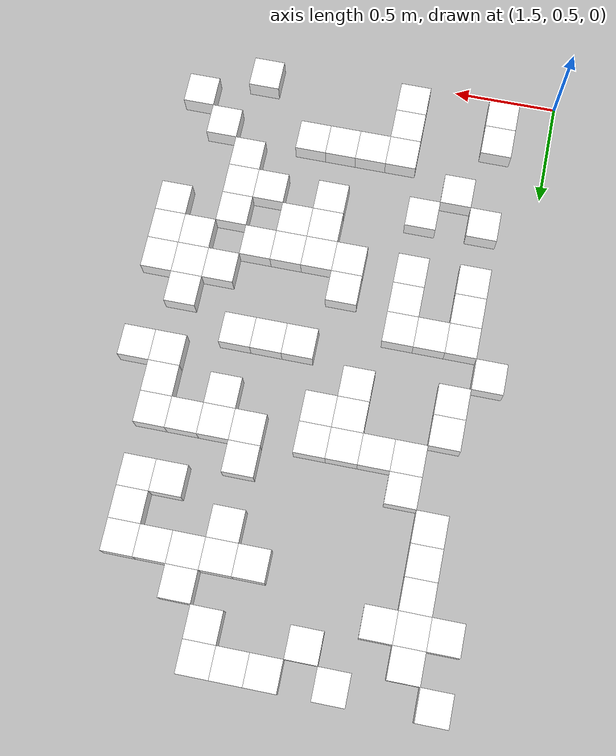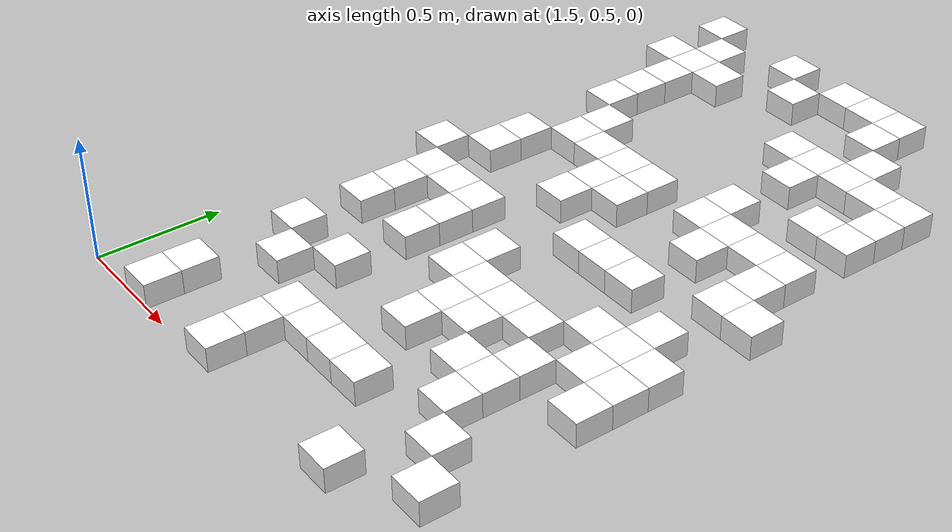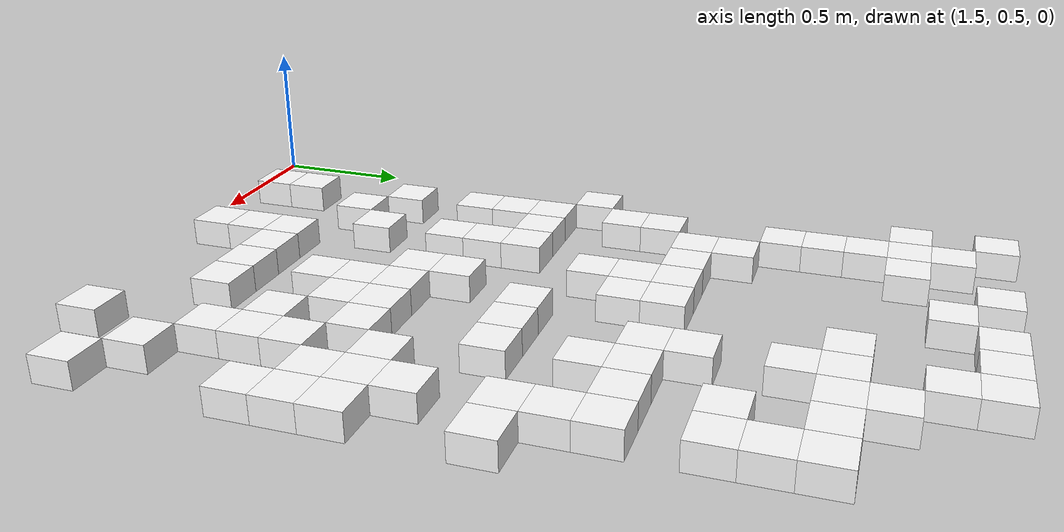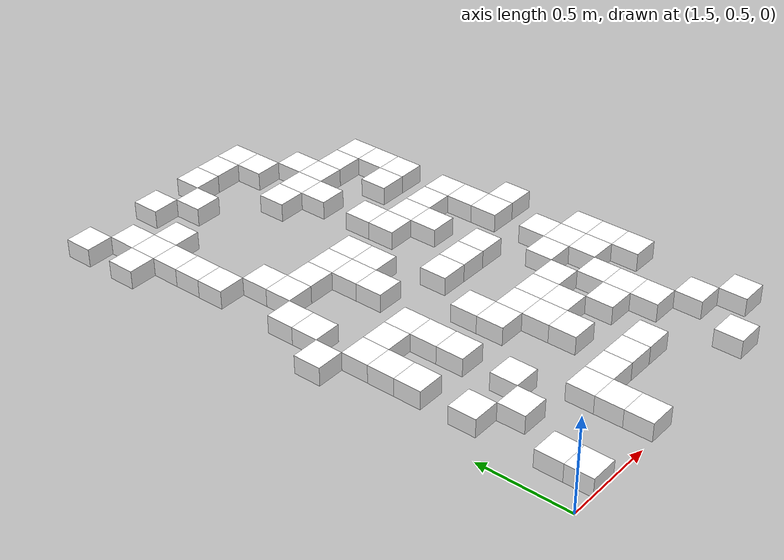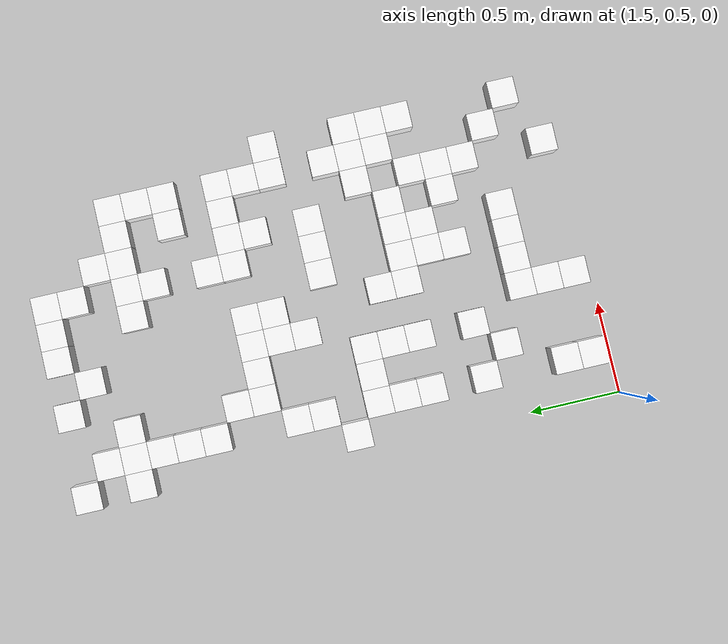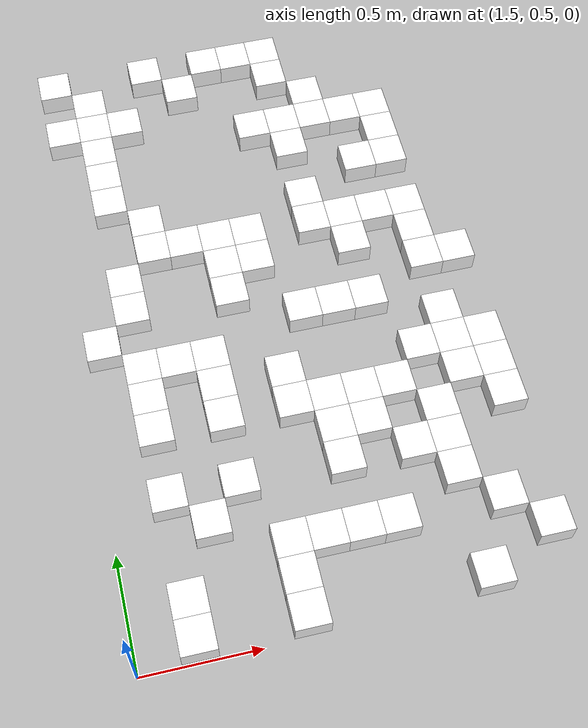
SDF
<sdf version="1.7">
 <world name="default">
  <include><uri>model://sun</uri></include>
  <model name="static_environment">
   <static>true</static>
   <link name="region_404">
    <pose>1.7499999999999996 0.6 0.0 0.0 0.0 0.0</pose>
    <collision name="region_404_collision">
     <geometry><box><size>0.15 0.15 0.1</size></box></geometry>
     <surface><friction><ode><mu>1.0</mu><mu2>1.0</mu2></ode></friction></surface>
    </collision>
    <visual name="region_404_visual">
     <geometry><box><size>0.15 0.15 0.1</size></box></geometry>
     <material><ambient>1.0 1.0 1.0 1.0</ambient><diffuse>1.0 1.0 1.0 1.0</diffuse></material>
    </visual>
   </link>
   <link name="region_405">
    <pose>2.2 0.6 0.0 0.0 0.0 0.0</pose>
    <collision name="region_405_collision">
     <geometry><box><size>0.15 0.15 0.1</size></box></geometry>
     <surface><friction><ode><mu>1.0</mu><mu2>1.0</mu2></ode></friction></surface>
    </collision>
    <visual name="region_405_visual">
     <geometry><box><size>0.15 0.15 0.1</size></box></geometry>
     <material><ambient>1.0 1.0 1.0 1.0</ambient><diffuse>1.0 1.0 1.0 1.0</diffuse></material>
    </visual>
   </link>
   <link name="region_406">
    <pose>2.950000000000002 0.6 0.0 0.0 0.0 0.0</pose>
    <collision name="region_406_collision">
     <geometry><box><size>0.15 0.15 0.1</size></box></geometry>
     <surface><friction><ode><mu>1.0</mu><mu2>1.0</mu2></ode></friction></surface>
    </collision>
    <visual name="region_406_visual">
     <geometry><box><size>0.15 0.15 0.1</size></box></geometry>
     <material><ambient>1.0 1.0 1.0 1.0</ambient><diffuse>1.0 1.0 1.0 1.0</diffuse></material>
    </visual>
   </link>
   <link name="region_411">
    <pose>1.7499999999999996 0.75 0.0 0.0 0.0 0.0</pose>
    <collision name="region_411_collision">
     <geometry><box><size>0.15 0.15 0.1</size></box></geometry>
     <surface><friction><ode><mu>1.0</mu><mu2>1.0</mu2></ode></friction></surface>
    </collision>
    <visual name="region_411_visual">
     <geometry><box><size>0.15 0.15 0.1</size></box></geometry>
     <material><ambient>1.0 1.0 1.0 1.0</ambient><diffuse>1.0 1.0 1.0 1.0</diffuse></material>
    </visual>
   </link>
   <link name="region_412">
    <pose>2.2 0.75 0.0 0.0 0.0 0.0</pose>
    <collision name="region_412_collision">
     <geometry><box><size>0.15 0.15 0.1</size></box></geometry>
     <surface><friction><ode><mu>1.0</mu><mu2>1.0</mu2></ode></friction></surface>
    </collision>
    <visual name="region_412_visual">
     <geometry><box><size>0.15 0.15 0.1</size></box></geometry>
     <material><ambient>1.0 1.0 1.0 1.0</ambient><diffuse>1.0 1.0 1.0 1.0</diffuse></material>
    </visual>
   </link>
   <link name="region_413">
    <pose>3.2500000000000027 0.75 0.0 0.0 0.0 0.0</pose>
    <collision name="region_413_collision">
     <geometry><box><size>0.15 0.15 0.1</size></box></geometry>
     <surface><friction><ode><mu>1.0</mu><mu2>1.0</mu2></ode></friction></surface>
    </collision>
    <visual name="region_413_visual">
     <geometry><box><size>0.15 0.15 0.1</size></box></geometry>
     <material><ambient>1.0 1.0 1.0 1.0</ambient><diffuse>1.0 1.0 1.0 1.0</diffuse></material>
    </visual>
   </link>
   <link name="region_416">
    <pose>2.2 0.8999999999999999 0.0 0.0 0.0 0.0</pose>
    <collision name="region_416_collision">
     <geometry><box><size>0.15 0.15 0.1</size></box></geometry>
     <surface><friction><ode><mu>1.0</mu><mu2>1.0</mu2></ode></friction></surface>
    </collision>
    <visual name="region_416_visual">
     <geometry><box><size>0.15 0.15 0.1</size></box></geometry>
     <material><ambient>1.0 1.0 1.0 1.0</ambient><diffuse>1.0 1.0 1.0 1.0</diffuse></material>
    </visual>
   </link>
   <link name="region_417">
    <pose>2.3500000000000005 0.8999999999999999 0.0 0.0 0.0 0.0</pose>
    <collision name="region_417_collision">
     <geometry><box><size>0.15 0.15 0.1</size></box></geometry>
     <surface><friction><ode><mu>1.0</mu><mu2>1.0</mu2></ode></friction></surface>
    </collision>
    <visual name="region_417_visual">
     <geometry><box><size>0.15 0.15 0.1</size></box></geometry>
     <material><ambient>1.0 1.0 1.0 1.0</ambient><diffuse>1.0 1.0 1.0 1.0</diffuse></material>
    </visual>
   </link>
   <link name="region_418">
    <pose>2.500000000000001 0.8999999999999999 0.0 0.0 0.0 0.0</pose>
    <collision name="region_418_collision">
     <geometry><box><size>0.15 0.15 0.1</size></box></geometry>
     <surface><friction><ode><mu>1.0</mu><mu2>1.0</mu2></ode></friction></surface>
    </collision>
    <visual name="region_418_visual">
     <geometry><box><size>0.15 0.15 0.1</size></box></geometry>
     <material><ambient>1.0 1.0 1.0 1.0</ambient><diffuse>1.0 1.0 1.0 1.0</diffuse></material>
    </visual>
   </link>
   <link name="region_419">
    <pose>2.6500000000000012 0.8999999999999999 0.0 0.0 0.0 0.0</pose>
    <collision name="region_419_collision">
     <geometry><box><size>0.15 0.15 0.1</size></box></geometry>
     <surface><friction><ode><mu>1.0</mu><mu2>1.0</mu2></ode></friction></surface>
    </collision>
    <visual name="region_419_visual">
     <geometry><box><size>0.15 0.15 0.1</size></box></geometry>
     <material><ambient>1.0 1.0 1.0 1.0</ambient><diffuse>1.0 1.0 1.0 1.0</diffuse></material>
    </visual>
   </link>
   <link name="region_420">
    <pose>3.1000000000000023 0.8999999999999999 0.0 0.0 0.0 0.0</pose>
    <collision name="region_420_collision">
     <geometry><box><size>0.15 0.15 0.1</size></box></geometry>
     <surface><friction><ode><mu>1.0</mu><mu2>1.0</mu2></ode></friction></surface>
    </collision>
    <visual name="region_420_visual">
     <geometry><box><size>0.15 0.15 0.1</size></box></geometry>
     <material><ambient>1.0 1.0 1.0 1.0</ambient><diffuse>1.0 1.0 1.0 1.0</diffuse></material>
    </visual>
   </link>
   <link name="region_424">
    <pose>1.8999999999999995 1.0499999999999998 0.0 0.0 0.0 0.0</pose>
    <collision name="region_424_collision">
     <geometry><box><size>0.15 0.15 0.1</size></box></geometry>
     <surface><friction><ode><mu>1.0</mu><mu2>1.0</mu2></ode></friction></surface>
    </collision>
    <visual name="region_424_visual">
     <geometry><box><size>0.15 0.15 0.1</size></box></geometry>
     <material><ambient>1.0 1.0 1.0 1.0</ambient><diffuse>1.0 1.0 1.0 1.0</diffuse></material>
    </visual>
   </link>
   <link name="region_425">
    <pose>2.950000000000002 1.0499999999999998 0.0 0.0 0.0 0.0</pose>
    <collision name="region_425_collision">
     <geometry><box><size>0.15 0.15 0.1</size></box></geometry>
     <surface><friction><ode><mu>1.0</mu><mu2>1.0</mu2></ode></friction></surface>
    </collision>
    <visual name="region_425_visual">
     <geometry><box><size>0.15 0.15 0.1</size></box></geometry>
     <material><ambient>1.0 1.0 1.0 1.0</ambient><diffuse>1.0 1.0 1.0 1.0</diffuse></material>
    </visual>
   </link>
   <link name="region_434">
    <pose>1.7499999999999996 1.2 0.0 0.0 0.0 0.0</pose>
    <collision name="region_434_collision">
     <geometry><box><size>0.15 0.15 0.1</size></box></geometry>
     <surface><friction><ode><mu>1.0</mu><mu2>1.0</mu2></ode></friction></surface>
    </collision>
    <visual name="region_434_visual">
     <geometry><box><size>0.15 0.15 0.1</size></box></geometry>
     <material><ambient>1.0 1.0 1.0 1.0</ambient><diffuse>1.0 1.0 1.0 1.0</diffuse></material>
    </visual>
   </link>
   <link name="region_435">
    <pose>2.05 1.2 0.0 0.0 0.0 0.0</pose>
    <collision name="region_435_collision">
     <geometry><box><size>0.15 0.15 0.1</size></box></geometry>
     <surface><friction><ode><mu>1.0</mu><mu2>1.0</mu2></ode></friction></surface>
    </collision>
    <visual name="region_435_visual">
     <geometry><box><size>0.15 0.15 0.1</size></box></geometry>
     <material><ambient>1.0 1.0 1.0 1.0</ambient><diffuse>1.0 1.0 1.0 1.0</diffuse></material>
    </visual>
   </link>
   <link name="region_436">
    <pose>2.500000000000001 1.2 0.0 0.0 0.0 0.0</pose>
    <collision name="region_436_collision">
     <geometry><box><size>0.15 0.15 0.1</size></box></geometry>
     <surface><friction><ode><mu>1.0</mu><mu2>1.0</mu2></ode></friction></surface>
    </collision>
    <visual name="region_436_visual">
     <geometry><box><size>0.15 0.15 0.1</size></box></geometry>
     <material><ambient>1.0 1.0 1.0 1.0</ambient><diffuse>1.0 1.0 1.0 1.0</diffuse></material>
    </visual>
   </link>
   <link name="region_437">
    <pose>2.8000000000000016 1.2 0.0 0.0 0.0 0.0</pose>
    <collision name="region_437_collision">
     <geometry><box><size>0.15 0.15 0.1</size></box></geometry>
     <surface><friction><ode><mu>1.0</mu><mu2>1.0</mu2></ode></friction></surface>
    </collision>
    <visual name="region_437_visual">
     <geometry><box><size>0.15 0.15 0.1</size></box></geometry>
     <material><ambient>1.0 1.0 1.0 1.0</ambient><diffuse>1.0 1.0 1.0 1.0</diffuse></material>
    </visual>
   </link>
   <link name="region_438">
    <pose>2.950000000000002 1.2 0.0 0.0 0.0 0.0</pose>
    <collision name="region_438_collision">
     <geometry><box><size>0.15 0.15 0.1</size></box></geometry>
     <surface><friction><ode><mu>1.0</mu><mu2>1.0</mu2></ode></friction></surface>
    </collision>
    <visual name="region_438_visual">
     <geometry><box><size>0.15 0.15 0.1</size></box></geometry>
     <material><ambient>1.0 1.0 1.0 1.0</ambient><diffuse>1.0 1.0 1.0 1.0</diffuse></material>
    </visual>
   </link>
   <link name="region_443">
    <pose>2.500000000000001 1.35 0.0 0.0 0.0 0.0</pose>
    <collision name="region_443_collision">
     <geometry><box><size>0.15 0.15 0.1</size></box></geometry>
     <surface><friction><ode><mu>1.0</mu><mu2>1.0</mu2></ode></friction></surface>
    </collision>
    <visual name="region_443_visual">
     <geometry><box><size>0.15 0.15 0.1</size></box></geometry>
     <material><ambient>1.0 1.0 1.0 1.0</ambient><diffuse>1.0 1.0 1.0 1.0</diffuse></material>
    </visual>
   </link>
   <link name="region_444">
    <pose>2.6500000000000012 1.35 0.0 0.0 0.0 0.0</pose>
    <collision name="region_444_collision">
     <geometry><box><size>0.15 0.15 0.1</size></box></geometry>
     <surface><friction><ode><mu>1.0</mu><mu2>1.0</mu2></ode></friction></surface>
    </collision>
    <visual name="region_444_visual">
     <geometry><box><size>0.15 0.15 0.1</size></box></geometry>
     <material><ambient>1.0 1.0 1.0 1.0</ambient><diffuse>1.0 1.0 1.0 1.0</diffuse></material>
    </visual>
   </link>
   <link name="region_445">
    <pose>2.950000000000002 1.35 0.0 0.0 0.0 0.0</pose>
    <collision name="region_445_collision">
     <geometry><box><size>0.15 0.15 0.1</size></box></geometry>
     <surface><friction><ode><mu>1.0</mu><mu2>1.0</mu2></ode></friction></surface>
    </collision>
    <visual name="region_445_visual">
     <geometry><box><size>0.15 0.15 0.1</size></box></geometry>
     <material><ambient>1.0 1.0 1.0 1.0</ambient><diffuse>1.0 1.0 1.0 1.0</diffuse></material>
    </visual>
   </link>
   <link name="region_446">
    <pose>3.2500000000000027 1.35 0.0 0.0 0.0 0.0</pose>
    <collision name="region_446_collision">
     <geometry><box><size>0.15 0.15 0.1</size></box></geometry>
     <surface><friction><ode><mu>1.0</mu><mu2>1.0</mu2></ode></friction></surface>
    </collision>
    <visual name="region_446_visual">
     <geometry><box><size>0.15 0.15 0.1</size></box></geometry>
     <material><ambient>1.0 1.0 1.0 1.0</ambient><diffuse>1.0 1.0 1.0 1.0</diffuse></material>
    </visual>
   </link>
   <link name="region_451">
    <pose>1.7499999999999996 1.5 0.0 0.0 0.0 0.0</pose>
    <collision name="region_451_collision">
     <geometry><box><size>0.15 0.15 0.1</size></box></geometry>
     <surface><friction><ode><mu>1.0</mu><mu2>1.0</mu2></ode></friction></surface>
    </collision>
    <visual name="region_451_visual">
     <geometry><box><size>0.15 0.15 0.1</size></box></geometry>
     <material><ambient>1.0 1.0 1.0 1.0</ambient><diffuse>1.0 1.0 1.0 1.0</diffuse></material>
    </visual>
   </link>
   <link name="region_452">
    <pose>2.05 1.5 0.0 0.0 0.0 0.0</pose>
    <collision name="region_452_collision">
     <geometry><box><size>0.15 0.15 0.1</size></box></geometry>
     <surface><friction><ode><mu>1.0</mu><mu2>1.0</mu2></ode></friction></surface>
    </collision>
    <visual name="region_452_visual">
     <geometry><box><size>0.15 0.15 0.1</size></box></geometry>
     <material><ambient>1.0 1.0 1.0 1.0</ambient><diffuse>1.0 1.0 1.0 1.0</diffuse></material>
    </visual>
   </link>
   <link name="region_453">
    <pose>2.3500000000000005 1.5 0.0 0.0 0.0 0.0</pose>
    <collision name="region_453_collision">
     <geometry><box><size>0.15 0.15 0.1</size></box></geometry>
     <surface><friction><ode><mu>1.0</mu><mu2>1.0</mu2></ode></friction></surface>
    </collision>
    <visual name="region_453_visual">
     <geometry><box><size>0.15 0.15 0.1</size></box></geometry>
     <material><ambient>1.0 1.0 1.0 1.0</ambient><diffuse>1.0 1.0 1.0 1.0</diffuse></material>
    </visual>
   </link>
   <link name="region_454">
    <pose>2.500000000000001 1.5 0.0 0.0 0.0 0.0</pose>
    <collision name="region_454_collision">
     <geometry><box><size>0.15 0.15 0.1</size></box></geometry>
     <surface><friction><ode><mu>1.0</mu><mu2>1.0</mu2></ode></friction></surface>
    </collision>
    <visual name="region_454_visual">
     <geometry><box><size>0.15 0.15 0.1</size></box></geometry>
     <material><ambient>1.0 1.0 1.0 1.0</ambient><diffuse>1.0 1.0 1.0 1.0</diffuse></material>
    </visual>
   </link>
   <link name="region_455">
    <pose>2.6500000000000012 1.5 0.0 0.0 0.0 0.0</pose>
    <collision name="region_455_collision">
     <geometry><box><size>0.15 0.15 0.1</size></box></geometry>
     <surface><friction><ode><mu>1.0</mu><mu2>1.0</mu2></ode></friction></surface>
    </collision>
    <visual name="region_455_visual">
     <geometry><box><size>0.15 0.15 0.1</size></box></geometry>
     <material><ambient>1.0 1.0 1.0 1.0</ambient><diffuse>1.0 1.0 1.0 1.0</diffuse></material>
    </visual>
   </link>
   <link name="region_456">
    <pose>2.8000000000000016 1.5 0.0 0.0 0.0 0.0</pose>
    <collision name="region_456_collision">
     <geometry><box><size>0.15 0.15 0.1</size></box></geometry>
     <surface><friction><ode><mu>1.0</mu><mu2>1.0</mu2></ode></friction></surface>
    </collision>
    <visual name="region_456_visual">
     <geometry><box><size>0.15 0.15 0.1</size></box></geometry>
     <material><ambient>1.0 1.0 1.0 1.0</ambient><diffuse>1.0 1.0 1.0 1.0</diffuse></material>
    </visual>
   </link>
   <link name="region_457">
    <pose>3.1000000000000023 1.5 0.0 0.0 0.0 0.0</pose>
    <collision name="region_457_collision">
     <geometry><box><size>0.15 0.15 0.1</size></box></geometry>
     <surface><friction><ode><mu>1.0</mu><mu2>1.0</mu2></ode></friction></surface>
    </collision>
    <visual name="region_457_visual">
     <geometry><box><size>0.15 0.15 0.1</size></box></geometry>
     <material><ambient>1.0 1.0 1.0 1.0</ambient><diffuse>1.0 1.0 1.0 1.0</diffuse></material>
    </visual>
   </link>
   <link name="region_458">
    <pose>3.2500000000000027 1.5 0.0 0.0 0.0 0.0</pose>
    <collision name="region_458_collision">
     <geometry><box><size>0.15 0.15 0.1</size></box></geometry>
     <surface><friction><ode><mu>1.0</mu><mu2>1.0</mu2></ode></friction></surface>
    </collision>
    <visual name="region_458_visual">
     <geometry><box><size>0.15 0.15 0.1</size></box></geometry>
     <material><ambient>1.0 1.0 1.0 1.0</ambient><diffuse>1.0 1.0 1.0 1.0</diffuse></material>
    </visual>
   </link>
   <link name="region_461">
    <pose>1.7499999999999996 1.65 0.0 0.0 0.0 0.0</pose>
    <collision name="region_461_collision">
     <geometry><box><size>0.15 0.15 0.1</size></box></geometry>
     <surface><friction><ode><mu>1.0</mu><mu2>1.0</mu2></ode></friction></surface>
    </collision>
    <visual name="region_461_visual">
     <geometry><box><size>0.15 0.15 0.1</size></box></geometry>
     <material><ambient>1.0 1.0 1.0 1.0</ambient><diffuse>1.0 1.0 1.0 1.0</diffuse></material>
    </visual>
   </link>
   <link name="region_462">
    <pose>2.05 1.65 0.0 0.0 0.0 0.0</pose>
    <collision name="region_462_collision">
     <geometry><box><size>0.15 0.15 0.1</size></box></geometry>
     <surface><friction><ode><mu>1.0</mu><mu2>1.0</mu2></ode></friction></surface>
    </collision>
    <visual name="region_462_visual">
     <geometry><box><size>0.15 0.15 0.1</size></box></geometry>
     <material><ambient>1.0 1.0 1.0 1.0</ambient><diffuse>1.0 1.0 1.0 1.0</diffuse></material>
    </visual>
   </link>
   <link name="region_463">
    <pose>2.3500000000000005 1.65 0.0 0.0 0.0 0.0</pose>
    <collision name="region_463_collision">
     <geometry><box><size>0.15 0.15 0.1</size></box></geometry>
     <surface><friction><ode><mu>1.0</mu><mu2>1.0</mu2></ode></friction></surface>
    </collision>
    <visual name="region_463_visual">
     <geometry><box><size>0.15 0.15 0.1</size></box></geometry>
     <material><ambient>1.0 1.0 1.0 1.0</ambient><diffuse>1.0 1.0 1.0 1.0</diffuse></material>
    </visual>
   </link>
   <link name="region_464">
    <pose>2.950000000000002 1.65 0.0 0.0 0.0 0.0</pose>
    <collision name="region_464_collision">
     <geometry><box><size>0.15 0.15 0.1</size></box></geometry>
     <surface><friction><ode><mu>1.0</mu><mu2>1.0</mu2></ode></friction></surface>
    </collision>
    <visual name="region_464_visual">
     <geometry><box><size>0.15 0.15 0.1</size></box></geometry>
     <material><ambient>1.0 1.0 1.0 1.0</ambient><diffuse>1.0 1.0 1.0 1.0</diffuse></material>
    </visual>
   </link>
   <link name="region_465">
    <pose>3.1000000000000023 1.65 0.0 0.0 0.0 0.0</pose>
    <collision name="region_465_collision">
     <geometry><box><size>0.15 0.15 0.1</size></box></geometry>
     <surface><friction><ode><mu>1.0</mu><mu2>1.0</mu2></ode></friction></surface>
    </collision>
    <visual name="region_465_visual">
     <geometry><box><size>0.15 0.15 0.1</size></box></geometry>
     <material><ambient>1.0 1.0 1.0 1.0</ambient><diffuse>1.0 1.0 1.0 1.0</diffuse></material>
    </visual>
   </link>
   <link name="region_466">
    <pose>3.2500000000000027 1.65 0.0 0.0 0.0 0.0</pose>
    <collision name="region_466_collision">
     <geometry><box><size>0.15 0.15 0.1</size></box></geometry>
     <surface><friction><ode><mu>1.0</mu><mu2>1.0</mu2></ode></friction></surface>
    </collision>
    <visual name="region_466_visual">
     <geometry><box><size>0.15 0.15 0.1</size></box></geometry>
     <material><ambient>1.0 1.0 1.0 1.0</ambient><diffuse>1.0 1.0 1.0 1.0</diffuse></material>
    </visual>
   </link>
   <link name="region_472">
    <pose>1.7499999999999996 1.7999999999999998 0.0 0.0 0.0 0.0</pose>
    <collision name="region_472_collision">
     <geometry><box><size>0.15 0.15 0.1</size></box></geometry>
     <surface><friction><ode><mu>1.0</mu><mu2>1.0</mu2></ode></friction></surface>
    </collision>
    <visual name="region_472_visual">
     <geometry><box><size>0.15 0.15 0.1</size></box></geometry>
     <material><ambient>1.0 1.0 1.0 1.0</ambient><diffuse>1.0 1.0 1.0 1.0</diffuse></material>
    </visual>
   </link>
   <link name="region_473">
    <pose>1.8999999999999995 1.7999999999999998 0.0 0.0 0.0 0.0</pose>
    <collision name="region_473_collision">
     <geometry><box><size>0.15 0.15 0.1</size></box></geometry>
     <surface><friction><ode><mu>1.0</mu><mu2>1.0</mu2></ode></friction></surface>
    </collision>
    <visual name="region_473_visual">
     <geometry><box><size>0.15 0.15 0.1</size></box></geometry>
     <material><ambient>1.0 1.0 1.0 1.0</ambient><diffuse>1.0 1.0 1.0 1.0</diffuse></material>
    </visual>
   </link>
   <link name="region_474">
    <pose>2.05 1.7999999999999998 0.0 0.0 0.0 0.0</pose>
    <collision name="region_474_collision">
     <geometry><box><size>0.15 0.15 0.1</size></box></geometry>
     <surface><friction><ode><mu>1.0</mu><mu2>1.0</mu2></ode></friction></surface>
    </collision>
    <visual name="region_474_visual">
     <geometry><box><size>0.15 0.15 0.1</size></box></geometry>
     <material><ambient>1.0 1.0 1.0 1.0</ambient><diffuse>1.0 1.0 1.0 1.0</diffuse></material>
    </visual>
   </link>
   <link name="region_475">
    <pose>3.1000000000000023 1.7999999999999998 0.0 0.0 0.0 0.0</pose>
    <collision name="region_475_collision">
     <geometry><box><size>0.15 0.15 0.1</size></box></geometry>
     <surface><friction><ode><mu>1.0</mu><mu2>1.0</mu2></ode></friction></surface>
    </collision>
    <visual name="region_475_visual">
     <geometry><box><size>0.15 0.15 0.1</size></box></geometry>
     <material><ambient>1.0 1.0 1.0 1.0</ambient><diffuse>1.0 1.0 1.0 1.0</diffuse></material>
    </visual>
   </link>
   <link name="region_479">
    <pose>1.5999999999999996 1.9499999999999997 0.0 0.0 0.0 0.0</pose>
    <collision name="region_479_collision">
     <geometry><box><size>0.15 0.15 0.1</size></box></geometry>
     <surface><friction><ode><mu>1.0</mu><mu2>1.0</mu2></ode></friction></surface>
    </collision>
    <visual name="region_479_visual">
     <geometry><box><size>0.15 0.15 0.1</size></box></geometry>
     <material><ambient>1.0 1.0 1.0 1.0</ambient><diffuse>1.0 1.0 1.0 1.0</diffuse></material>
    </visual>
   </link>
   <link name="region_480">
    <pose>2.500000000000001 1.9499999999999997 0.0 0.0 0.0 0.0</pose>
    <collision name="region_480_collision">
     <geometry><box><size>0.15 0.15 0.1</size></box></geometry>
     <surface><friction><ode><mu>1.0</mu><mu2>1.0</mu2></ode></friction></surface>
    </collision>
    <visual name="region_480_visual">
     <geometry><box><size>0.15 0.15 0.1</size></box></geometry>
     <material><ambient>1.0 1.0 1.0 1.0</ambient><diffuse>1.0 1.0 1.0 1.0</diffuse></material>
    </visual>
   </link>
   <link name="region_481">
    <pose>2.6500000000000012 1.9499999999999997 0.0 0.0 0.0 0.0</pose>
    <collision name="region_481_collision">
     <geometry><box><size>0.15 0.15 0.1</size></box></geometry>
     <surface><friction><ode><mu>1.0</mu><mu2>1.0</mu2></ode></friction></surface>
    </collision>
    <visual name="region_481_visual">
     <geometry><box><size>0.15 0.15 0.1</size></box></geometry>
     <material><ambient>1.0 1.0 1.0 1.0</ambient><diffuse>1.0 1.0 1.0 1.0</diffuse></material>
    </visual>
   </link>
   <link name="region_482">
    <pose>2.8000000000000016 1.9499999999999997 0.0 0.0 0.0 0.0</pose>
    <collision name="region_482_collision">
     <geometry><box><size>0.15 0.15 0.1</size></box></geometry>
     <surface><friction><ode><mu>1.0</mu><mu2>1.0</mu2></ode></friction></surface>
    </collision>
    <visual name="region_482_visual">
     <geometry><box><size>0.15 0.15 0.1</size></box></geometry>
     <material><ambient>1.0 1.0 1.0 1.0</ambient><diffuse>1.0 1.0 1.0 1.0</diffuse></material>
    </visual>
   </link>
   <link name="region_485">
    <pose>1.7499999999999996 2.0999999999999996 0.0 0.0 0.0 0.0</pose>
    <collision name="region_485_collision">
     <geometry><box><size>0.15 0.15 0.1</size></box></geometry>
     <surface><friction><ode><mu>1.0</mu><mu2>1.0</mu2></ode></friction></surface>
    </collision>
    <visual name="region_485_visual">
     <geometry><box><size>0.15 0.15 0.1</size></box></geometry>
     <material><ambient>1.0 1.0 1.0 1.0</ambient><diffuse>1.0 1.0 1.0 1.0</diffuse></material>
    </visual>
   </link>
   <link name="region_486">
    <pose>2.2 2.0999999999999996 0.0 0.0 0.0 0.0</pose>
    <collision name="region_486_collision">
     <geometry><box><size>0.15 0.15 0.1</size></box></geometry>
     <surface><friction><ode><mu>1.0</mu><mu2>1.0</mu2></ode></friction></surface>
    </collision>
    <visual name="region_486_visual">
     <geometry><box><size>0.15 0.15 0.1</size></box></geometry>
     <material><ambient>1.0 1.0 1.0 1.0</ambient><diffuse>1.0 1.0 1.0 1.0</diffuse></material>
    </visual>
   </link>
   <link name="region_487">
    <pose>3.1000000000000023 2.0999999999999996 0.0 0.0 0.0 0.0</pose>
    <collision name="region_487_collision">
     <geometry><box><size>0.15 0.15 0.1</size></box></geometry>
     <surface><friction><ode><mu>1.0</mu><mu2>1.0</mu2></ode></friction></surface>
    </collision>
    <visual name="region_487_visual">
     <geometry><box><size>0.15 0.15 0.1</size></box></geometry>
     <material><ambient>1.0 1.0 1.0 1.0</ambient><diffuse>1.0 1.0 1.0 1.0</diffuse></material>
    </visual>
   </link>
   <link name="region_488">
    <pose>3.2500000000000027 2.0999999999999996 0.0 0.0 0.0 0.0</pose>
    <collision name="region_488_collision">
     <geometry><box><size>0.15 0.15 0.1</size></box></geometry>
     <surface><friction><ode><mu>1.0</mu><mu2>1.0</mu2></ode></friction></surface>
    </collision>
    <visual name="region_488_visual">
     <geometry><box><size>0.15 0.15 0.1</size></box></geometry>
     <material><ambient>1.0 1.0 1.0 1.0</ambient><diffuse>1.0 1.0 1.0 1.0</diffuse></material>
    </visual>
   </link>
   <link name="region_491">
    <pose>1.7499999999999996 2.2499999999999996 0.0 0.0 0.0 0.0</pose>
    <collision name="region_491_collision">
     <geometry><box><size>0.15 0.15 0.1</size></box></geometry>
     <surface><friction><ode><mu>1.0</mu><mu2>1.0</mu2></ode></friction></surface>
    </collision>
    <visual name="region_491_visual">
     <geometry><box><size>0.15 0.15 0.1</size></box></geometry>
     <material><ambient>1.0 1.0 1.0 1.0</ambient><diffuse>1.0 1.0 1.0 1.0</diffuse></material>
    </visual>
   </link>
   <link name="region_492">
    <pose>2.2 2.2499999999999996 0.0 0.0 0.0 0.0</pose>
    <collision name="region_492_collision">
     <geometry><box><size>0.15 0.15 0.1</size></box></geometry>
     <surface><friction><ode><mu>1.0</mu><mu2>1.0</mu2></ode></friction></surface>
    </collision>
    <visual name="region_492_visual">
     <geometry><box><size>0.15 0.15 0.1</size></box></geometry>
     <material><ambient>1.0 1.0 1.0 1.0</ambient><diffuse>1.0 1.0 1.0 1.0</diffuse></material>
    </visual>
   </link>
   <link name="region_493">
    <pose>2.3500000000000005 2.2499999999999996 0.0 0.0 0.0 0.0</pose>
    <collision name="region_493_collision">
     <geometry><box><size>0.15 0.15 0.1</size></box></geometry>
     <surface><friction><ode><mu>1.0</mu><mu2>1.0</mu2></ode></friction></surface>
    </collision>
    <visual name="region_493_visual">
     <geometry><box><size>0.15 0.15 0.1</size></box></geometry>
     <material><ambient>1.0 1.0 1.0 1.0</ambient><diffuse>1.0 1.0 1.0 1.0</diffuse></material>
    </visual>
   </link>
   <link name="region_494">
    <pose>2.8000000000000016 2.2499999999999996 0.0 0.0 0.0 0.0</pose>
    <collision name="region_494_collision">
     <geometry><box><size>0.15 0.15 0.1</size></box></geometry>
     <surface><friction><ode><mu>1.0</mu><mu2>1.0</mu2></ode></friction></surface>
    </collision>
    <visual name="region_494_visual">
     <geometry><box><size>0.15 0.15 0.1</size></box></geometry>
     <material><ambient>1.0 1.0 1.0 1.0</ambient><diffuse>1.0 1.0 1.0 1.0</diffuse></material>
    </visual>
   </link>
   <link name="region_495">
    <pose>3.1000000000000023 2.2499999999999996 0.0 0.0 0.0 0.0</pose>
    <collision name="region_495_collision">
     <geometry><box><size>0.15 0.15 0.1</size></box></geometry>
     <surface><friction><ode><mu>1.0</mu><mu2>1.0</mu2></ode></friction></surface>
    </collision>
    <visual name="region_495_visual">
     <geometry><box><size>0.15 0.15 0.1</size></box></geometry>
     <material><ambient>1.0 1.0 1.0 1.0</ambient><diffuse>1.0 1.0 1.0 1.0</diffuse></material>
    </visual>
   </link>
   <link name="region_498">
    <pose>1.8999999999999995 2.3999999999999995 0.0 0.0 0.0 0.0</pose>
    <collision name="region_498_collision">
     <geometry><box><size>0.15 0.15 0.1</size></box></geometry>
     <surface><friction><ode><mu>1.0</mu><mu2>1.0</mu2></ode></friction></surface>
    </collision>
    <visual name="region_498_visual">
     <geometry><box><size>0.15 0.15 0.1</size></box></geometry>
     <material><ambient>1.0 1.0 1.0 1.0</ambient><diffuse>1.0 1.0 1.0 1.0</diffuse></material>
    </visual>
   </link>
   <link name="region_499">
    <pose>2.05 2.3999999999999995 0.0 0.0 0.0 0.0</pose>
    <collision name="region_499_collision">
     <geometry><box><size>0.15 0.15 0.1</size></box></geometry>
     <surface><friction><ode><mu>1.0</mu><mu2>1.0</mu2></ode></friction></surface>
    </collision>
    <visual name="region_499_visual">
     <geometry><box><size>0.15 0.15 0.1</size></box></geometry>
     <material><ambient>1.0 1.0 1.0 1.0</ambient><diffuse>1.0 1.0 1.0 1.0</diffuse></material>
    </visual>
   </link>
   <link name="region_500">
    <pose>2.2 2.3999999999999995 0.0 0.0 0.0 0.0</pose>
    <collision name="region_500_collision">
     <geometry><box><size>0.15 0.15 0.1</size></box></geometry>
     <surface><friction><ode><mu>1.0</mu><mu2>1.0</mu2></ode></friction></surface>
    </collision>
    <visual name="region_500_visual">
     <geometry><box><size>0.15 0.15 0.1</size></box></geometry>
     <material><ambient>1.0 1.0 1.0 1.0</ambient><diffuse>1.0 1.0 1.0 1.0</diffuse></material>
    </visual>
   </link>
   <link name="region_501">
    <pose>2.3500000000000005 2.3999999999999995 0.0 0.0 0.0 0.0</pose>
    <collision name="region_501_collision">
     <geometry><box><size>0.15 0.15 0.1</size></box></geometry>
     <surface><friction><ode><mu>1.0</mu><mu2>1.0</mu2></ode></friction></surface>
    </collision>
    <visual name="region_501_visual">
     <geometry><box><size>0.15 0.15 0.1</size></box></geometry>
     <material><ambient>1.0 1.0 1.0 1.0</ambient><diffuse>1.0 1.0 1.0 1.0</diffuse></material>
    </visual>
   </link>
   <link name="region_502">
    <pose>2.6500000000000012 2.3999999999999995 0.0 0.0 0.0 0.0</pose>
    <collision name="region_502_collision">
     <geometry><box><size>0.15 0.15 0.1</size></box></geometry>
     <surface><friction><ode><mu>1.0</mu><mu2>1.0</mu2></ode></friction></surface>
    </collision>
    <visual name="region_502_visual">
     <geometry><box><size>0.15 0.15 0.1</size></box></geometry>
     <material><ambient>1.0 1.0 1.0 1.0</ambient><diffuse>1.0 1.0 1.0 1.0</diffuse></material>
    </visual>
   </link>
   <link name="region_503">
    <pose>2.8000000000000016 2.3999999999999995 0.0 0.0 0.0 0.0</pose>
    <collision name="region_503_collision">
     <geometry><box><size>0.15 0.15 0.1</size></box></geometry>
     <surface><friction><ode><mu>1.0</mu><mu2>1.0</mu2></ode></friction></surface>
    </collision>
    <visual name="region_503_visual">
     <geometry><box><size>0.15 0.15 0.1</size></box></geometry>
     <material><ambient>1.0 1.0 1.0 1.0</ambient><diffuse>1.0 1.0 1.0 1.0</diffuse></material>
    </visual>
   </link>
   <link name="region_504">
    <pose>2.950000000000002 2.3999999999999995 0.0 0.0 0.0 0.0</pose>
    <collision name="region_504_collision">
     <geometry><box><size>0.15 0.15 0.1</size></box></geometry>
     <surface><friction><ode><mu>1.0</mu><mu2>1.0</mu2></ode></friction></surface>
    </collision>
    <visual name="region_504_visual">
     <geometry><box><size>0.15 0.15 0.1</size></box></geometry>
     <material><ambient>1.0 1.0 1.0 1.0</ambient><diffuse>1.0 1.0 1.0 1.0</diffuse></material>
    </visual>
   </link>
   <link name="region_505">
    <pose>3.1000000000000023 2.3999999999999995 0.0 0.0 0.0 0.0</pose>
    <collision name="region_505_collision">
     <geometry><box><size>0.15 0.15 0.1</size></box></geometry>
     <surface><friction><ode><mu>1.0</mu><mu2>1.0</mu2></ode></friction></surface>
    </collision>
    <visual name="region_505_visual">
     <geometry><box><size>0.15 0.15 0.1</size></box></geometry>
     <material><ambient>1.0 1.0 1.0 1.0</ambient><diffuse>1.0 1.0 1.0 1.0</diffuse></material>
    </visual>
   </link>
   <link name="region_508">
    <pose>1.8999999999999995 2.5499999999999994 0.0 0.0 0.0 0.0</pose>
    <collision name="region_508_collision">
     <geometry><box><size>0.15 0.15 0.1</size></box></geometry>
     <surface><friction><ode><mu>1.0</mu><mu2>1.0</mu2></ode></friction></surface>
    </collision>
    <visual name="region_508_visual">
     <geometry><box><size>0.15 0.15 0.1</size></box></geometry>
     <material><ambient>1.0 1.0 1.0 1.0</ambient><diffuse>1.0 1.0 1.0 1.0</diffuse></material>
    </visual>
   </link>
   <link name="region_509">
    <pose>2.6500000000000012 2.5499999999999994 0.0 0.0 0.0 0.0</pose>
    <collision name="region_509_collision">
     <geometry><box><size>0.15 0.15 0.1</size></box></geometry>
     <surface><friction><ode><mu>1.0</mu><mu2>1.0</mu2></ode></friction></surface>
    </collision>
    <visual name="region_509_visual">
     <geometry><box><size>0.15 0.15 0.1</size></box></geometry>
     <material><ambient>1.0 1.0 1.0 1.0</ambient><diffuse>1.0 1.0 1.0 1.0</diffuse></material>
    </visual>
   </link>
   <link name="region_515">
    <pose>1.7499999999999996 2.6999999999999997 0.0 0.0 0.0 0.0</pose>
    <collision name="region_515_collision">
     <geometry><box><size>0.15 0.15 0.1</size></box></geometry>
     <surface><friction><ode><mu>1.0</mu><mu2>1.0</mu2></ode></friction></surface>
    </collision>
    <visual name="region_515_visual">
     <geometry><box><size>0.15 0.15 0.1</size></box></geometry>
     <material><ambient>1.0 1.0 1.0 1.0</ambient><diffuse>1.0 1.0 1.0 1.0</diffuse></material>
    </visual>
   </link>
   <link name="region_516">
    <pose>2.950000000000002 2.6999999999999997 0.0 0.0 0.0 0.0</pose>
    <collision name="region_516_collision">
     <geometry><box><size>0.15 0.15 0.1</size></box></geometry>
     <surface><friction><ode><mu>1.0</mu><mu2>1.0</mu2></ode></friction></surface>
    </collision>
    <visual name="region_516_visual">
     <geometry><box><size>0.15 0.15 0.1</size></box></geometry>
     <material><ambient>1.0 1.0 1.0 1.0</ambient><diffuse>1.0 1.0 1.0 1.0</diffuse></material>
    </visual>
   </link>
   <link name="region_517">
    <pose>3.1000000000000023 2.6999999999999997 0.0 0.0 0.0 0.0</pose>
    <collision name="region_517_collision">
     <geometry><box><size>0.15 0.15 0.1</size></box></geometry>
     <surface><friction><ode><mu>1.0</mu><mu2>1.0</mu2></ode></friction></surface>
    </collision>
    <visual name="region_517_visual">
     <geometry><box><size>0.15 0.15 0.1</size></box></geometry>
     <material><ambient>1.0 1.0 1.0 1.0</ambient><diffuse>1.0 1.0 1.0 1.0</diffuse></material>
    </visual>
   </link>
   <link name="region_522">
    <pose>1.7499999999999996 2.8499999999999996 0.0 0.0 0.0 0.0</pose>
    <collision name="region_522_collision">
     <geometry><box><size>0.15 0.15 0.1</size></box></geometry>
     <surface><friction><ode><mu>1.0</mu><mu2>1.0</mu2></ode></friction></surface>
    </collision>
    <visual name="region_522_visual">
     <geometry><box><size>0.15 0.15 0.1</size></box></geometry>
     <material><ambient>1.0 1.0 1.0 1.0</ambient><diffuse>1.0 1.0 1.0 1.0</diffuse></material>
    </visual>
   </link>
   <link name="region_523">
    <pose>2.6500000000000012 2.8499999999999996 0.0 0.0 0.0 0.0</pose>
    <collision name="region_523_collision">
     <geometry><box><size>0.15 0.15 0.1</size></box></geometry>
     <surface><friction><ode><mu>1.0</mu><mu2>1.0</mu2></ode></friction></surface>
    </collision>
    <visual name="region_523_visual">
     <geometry><box><size>0.15 0.15 0.1</size></box></geometry>
     <material><ambient>1.0 1.0 1.0 1.0</ambient><diffuse>1.0 1.0 1.0 1.0</diffuse></material>
    </visual>
   </link>
   <link name="region_524">
    <pose>3.1000000000000023 2.8499999999999996 0.0 0.0 0.0 0.0</pose>
    <collision name="region_524_collision">
     <geometry><box><size>0.15 0.15 0.1</size></box></geometry>
     <surface><friction><ode><mu>1.0</mu><mu2>1.0</mu2></ode></friction></surface>
    </collision>
    <visual name="region_524_visual">
     <geometry><box><size>0.15 0.15 0.1</size></box></geometry>
     <material><ambient>1.0 1.0 1.0 1.0</ambient><diffuse>1.0 1.0 1.0 1.0</diffuse></material>
    </visual>
   </link>
   <link name="region_531">
    <pose>1.7499999999999996 2.9999999999999996 0.0 0.0 0.0 0.0</pose>
    <collision name="region_531_collision">
     <geometry><box><size>0.15 0.15 0.1</size></box></geometry>
     <surface><friction><ode><mu>1.0</mu><mu2>1.0</mu2></ode></friction></surface>
    </collision>
    <visual name="region_531_visual">
     <geometry><box><size>0.15 0.15 0.1</size></box></geometry>
     <material><ambient>1.0 1.0 1.0 1.0</ambient><diffuse>1.0 1.0 1.0 1.0</diffuse></material>
    </visual>
   </link>
   <link name="region_532">
    <pose>2.500000000000001 2.9999999999999996 0.0 0.0 0.0 0.0</pose>
    <collision name="region_532_collision">
     <geometry><box><size>0.15 0.15 0.1</size></box></geometry>
     <surface><friction><ode><mu>1.0</mu><mu2>1.0</mu2></ode></friction></surface>
    </collision>
    <visual name="region_532_visual">
     <geometry><box><size>0.15 0.15 0.1</size></box></geometry>
     <material><ambient>1.0 1.0 1.0 1.0</ambient><diffuse>1.0 1.0 1.0 1.0</diffuse></material>
    </visual>
   </link>
   <link name="region_533">
    <pose>2.6500000000000012 2.9999999999999996 0.0 0.0 0.0 0.0</pose>
    <collision name="region_533_collision">
     <geometry><box><size>0.15 0.15 0.1</size></box></geometry>
     <surface><friction><ode><mu>1.0</mu><mu2>1.0</mu2></ode></friction></surface>
    </collision>
    <visual name="region_533_visual">
     <geometry><box><size>0.15 0.15 0.1</size></box></geometry>
     <material><ambient>1.0 1.0 1.0 1.0</ambient><diffuse>1.0 1.0 1.0 1.0</diffuse></material>
    </visual>
   </link>
   <link name="region_534">
    <pose>2.8000000000000016 2.9999999999999996 0.0 0.0 0.0 0.0</pose>
    <collision name="region_534_collision">
     <geometry><box><size>0.15 0.15 0.1</size></box></geometry>
     <surface><friction><ode><mu>1.0</mu><mu2>1.0</mu2></ode></friction></surface>
    </collision>
    <visual name="region_534_visual">
     <geometry><box><size>0.15 0.15 0.1</size></box></geometry>
     <material><ambient>1.0 1.0 1.0 1.0</ambient><diffuse>1.0 1.0 1.0 1.0</diffuse></material>
    </visual>
   </link>
   <link name="region_535">
    <pose>2.950000000000002 2.9999999999999996 0.0 0.0 0.0 0.0</pose>
    <collision name="region_535_collision">
     <geometry><box><size>0.15 0.15 0.1</size></box></geometry>
     <surface><friction><ode><mu>1.0</mu><mu2>1.0</mu2></ode></friction></surface>
    </collision>
    <visual name="region_535_visual">
     <geometry><box><size>0.15 0.15 0.1</size></box></geometry>
     <material><ambient>1.0 1.0 1.0 1.0</ambient><diffuse>1.0 1.0 1.0 1.0</diffuse></material>
    </visual>
   </link>
   <link name="region_536">
    <pose>3.1000000000000023 2.9999999999999996 0.0 0.0 0.0 0.0</pose>
    <collision name="region_536_collision">
     <geometry><box><size>0.15 0.15 0.1</size></box></geometry>
     <surface><friction><ode><mu>1.0</mu><mu2>1.0</mu2></ode></friction></surface>
    </collision>
    <visual name="region_536_visual">
     <geometry><box><size>0.15 0.15 0.1</size></box></geometry>
     <material><ambient>1.0 1.0 1.0 1.0</ambient><diffuse>1.0 1.0 1.0 1.0</diffuse></material>
    </visual>
   </link>
   <link name="region_542">
    <pose>1.5999999999999996 3.1499999999999995 0.0 0.0 0.0 0.0</pose>
    <collision name="region_542_collision">
     <geometry><box><size>0.15 0.15 0.1</size></box></geometry>
     <surface><friction><ode><mu>1.0</mu><mu2>1.0</mu2></ode></friction></surface>
    </collision>
    <visual name="region_542_visual">
     <geometry><box><size>0.15 0.15 0.1</size></box></geometry>
     <material><ambient>1.0 1.0 1.0 1.0</ambient><diffuse>1.0 1.0 1.0 1.0</diffuse></material>
    </visual>
   </link>
   <link name="region_543">
    <pose>1.7499999999999996 3.1499999999999995 0.0 0.0 0.0 0.0</pose>
    <collision name="region_543_collision">
     <geometry><box><size>0.15 0.15 0.1</size></box></geometry>
     <surface><friction><ode><mu>1.0</mu><mu2>1.0</mu2></ode></friction></surface>
    </collision>
    <visual name="region_543_visual">
     <geometry><box><size>0.15 0.15 0.1</size></box></geometry>
     <material><ambient>1.0 1.0 1.0 1.0</ambient><diffuse>1.0 1.0 1.0 1.0</diffuse></material>
    </visual>
   </link>
   <link name="region_544">
    <pose>1.8999999999999995 3.1499999999999995 0.0 0.0 0.0 0.0</pose>
    <collision name="region_544_collision">
     <geometry><box><size>0.15 0.15 0.1</size></box></geometry>
     <surface><friction><ode><mu>1.0</mu><mu2>1.0</mu2></ode></friction></surface>
    </collision>
    <visual name="region_544_visual">
     <geometry><box><size>0.15 0.15 0.1</size></box></geometry>
     <material><ambient>1.0 1.0 1.0 1.0</ambient><diffuse>1.0 1.0 1.0 1.0</diffuse></material>
    </visual>
   </link>
   <link name="region_545">
    <pose>2.8000000000000016 3.1499999999999995 0.0 0.0 0.0 0.0</pose>
    <collision name="region_545_collision">
     <geometry><box><size>0.15 0.15 0.1</size></box></geometry>
     <surface><friction><ode><mu>1.0</mu><mu2>1.0</mu2></ode></friction></surface>
    </collision>
    <visual name="region_545_visual">
     <geometry><box><size>0.15 0.15 0.1</size></box></geometry>
     <material><ambient>1.0 1.0 1.0 1.0</ambient><diffuse>1.0 1.0 1.0 1.0</diffuse></material>
    </visual>
   </link>
   <link name="region_551">
    <pose>1.7499999999999996 3.2999999999999994 0.0 0.0 0.0 0.0</pose>
    <collision name="region_551_collision">
     <geometry><box><size>0.15 0.15 0.1</size></box></geometry>
     <surface><friction><ode><mu>1.0</mu><mu2>1.0</mu2></ode></friction></surface>
    </collision>
    <visual name="region_551_visual">
     <geometry><box><size>0.15 0.15 0.1</size></box></geometry>
     <material><ambient>1.0 1.0 1.0 1.0</ambient><diffuse>1.0 1.0 1.0 1.0</diffuse></material>
    </visual>
   </link>
   <link name="region_552">
    <pose>2.2 3.2999999999999994 0.0 0.0 0.0 0.0</pose>
    <collision name="region_552_collision">
     <geometry><box><size>0.15 0.15 0.1</size></box></geometry>
     <surface><friction><ode><mu>1.0</mu><mu2>1.0</mu2></ode></friction></surface>
    </collision>
    <visual name="region_552_visual">
     <geometry><box><size>0.15 0.15 0.1</size></box></geometry>
     <material><ambient>1.0 1.0 1.0 1.0</ambient><diffuse>1.0 1.0 1.0 1.0</diffuse></material>
    </visual>
   </link>
   <link name="region_553">
    <pose>2.6500000000000012 3.2999999999999994 0.0 0.0 0.0 0.0</pose>
    <collision name="region_553_collision">
     <geometry><box><size>0.15 0.15 0.1</size></box></geometry>
     <surface><friction><ode><mu>1.0</mu><mu2>1.0</mu2></ode></friction></surface>
    </collision>
    <visual name="region_553_visual">
     <geometry><box><size>0.15 0.15 0.1</size></box></geometry>
     <material><ambient>1.0 1.0 1.0 1.0</ambient><diffuse>1.0 1.0 1.0 1.0</diffuse></material>
    </visual>
   </link>
   <link name="region_557">
    <pose>1.5999999999999996 3.4499999999999993 0.0 0.0 0.0 0.0</pose>
    <collision name="region_557_collision">
     <geometry><box><size>0.15 0.15 0.1</size></box></geometry>
     <surface><friction><ode><mu>1.0</mu><mu2>1.0</mu2></ode></friction></surface>
    </collision>
    <visual name="region_557_visual">
     <geometry><box><size>0.15 0.15 0.1</size></box></geometry>
     <material><ambient>1.0 1.0 1.0 1.0</ambient><diffuse>1.0 1.0 1.0 1.0</diffuse></material>
    </visual>
   </link>
   <link name="region_558">
    <pose>2.05 3.4499999999999993 0.0 0.0 0.0 0.0</pose>
    <collision name="region_558_collision">
     <geometry><box><size>0.15 0.15 0.1</size></box></geometry>
     <surface><friction><ode><mu>1.0</mu><mu2>1.0</mu2></ode></friction></surface>
    </collision>
    <visual name="region_558_visual">
     <geometry><box><size>0.15 0.15 0.1</size></box></geometry>
     <material><ambient>1.0 1.0 1.0 1.0</ambient><diffuse>1.0 1.0 1.0 1.0</diffuse></material>
    </visual>
   </link>
   <link name="region_559">
    <pose>2.3500000000000005 3.4499999999999993 0.0 0.0 0.0 0.0</pose>
    <collision name="region_559_collision">
     <geometry><box><size>0.15 0.15 0.1</size></box></geometry>
     <surface><friction><ode><mu>1.0</mu><mu2>1.0</mu2></ode></friction></surface>
    </collision>
    <visual name="region_559_visual">
     <geometry><box><size>0.15 0.15 0.1</size></box></geometry>
     <material><ambient>1.0 1.0 1.0 1.0</ambient><diffuse>1.0 1.0 1.0 1.0</diffuse></material>
    </visual>
   </link>
   <link name="region_560">
    <pose>2.500000000000001 3.4499999999999993 0.0 0.0 0.0 0.0</pose>
    <collision name="region_560_collision">
     <geometry><box><size>0.15 0.15 0.1</size></box></geometry>
     <surface><friction><ode><mu>1.0</mu><mu2>1.0</mu2></ode></friction></surface>
    </collision>
    <visual name="region_560_visual">
     <geometry><box><size>0.15 0.15 0.1</size></box></geometry>
     <material><ambient>1.0 1.0 1.0 1.0</ambient><diffuse>1.0 1.0 1.0 1.0</diffuse></material>
    </visual>
   </link>
   <link name="region_561">
    <pose>2.6500000000000012 3.4499999999999993 0.0 0.0 0.0 0.0</pose>
    <collision name="region_561_collision">
     <geometry><box><size>0.15 0.15 0.1</size></box></geometry>
     <surface><friction><ode><mu>1.0</mu><mu2>1.0</mu2></ode></friction></surface>
    </collision>
    <visual name="region_561_visual">
     <geometry><box><size>0.15 0.15 0.1</size></box></geometry>
     <material><ambient>1.0 1.0 1.0 1.0</ambient><diffuse>1.0 1.0 1.0 1.0</diffuse></material>
    </visual>
   </link>
  </model>
 </world>
</sdf>
